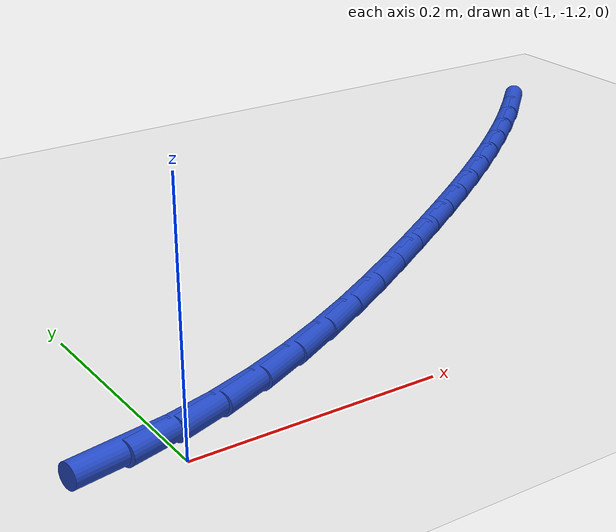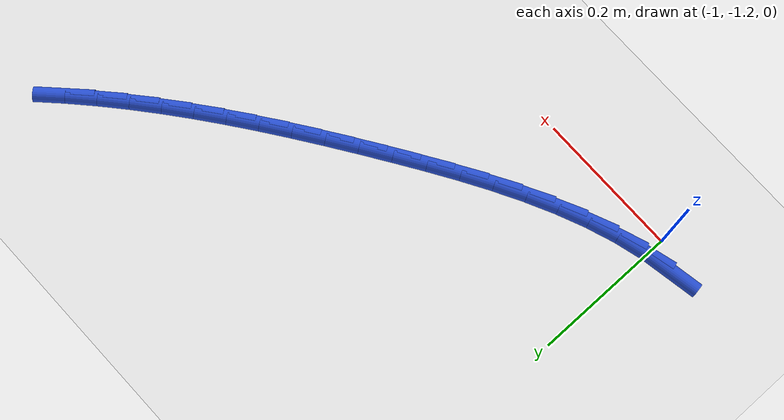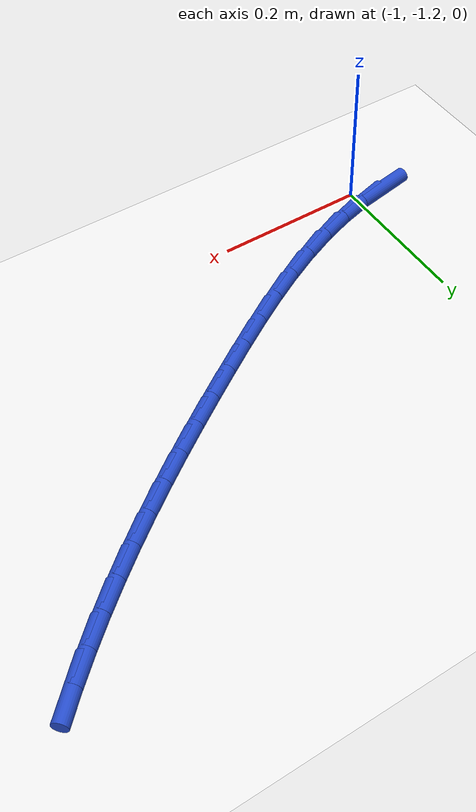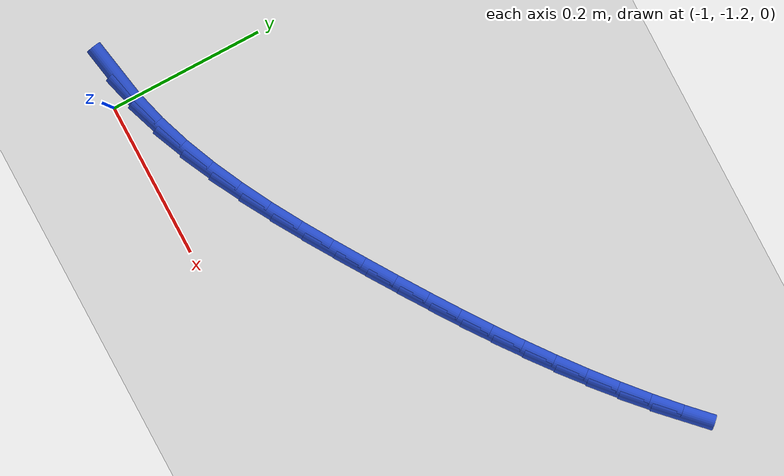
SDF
<sdf version="1.6">
 <world name="default">
  <model name="ground_plane">
   <static>1</static>
   <link name="link">
    <collision name="collision">
     <geometry><plane><normal>0 0 1</normal><size>100 100</size></plane></geometry>
     <surface><friction><ode><mu>100</mu><mu2>50</mu2></ode></friction></surface>
    </collision>
    <visual name="visual">
     <cast_shadows>0</cast_shadows>
     <geometry><plane><normal>0 0 1</normal><size>100 100</size></plane></geometry>
     <material>
      <script><uri>file://media/materials/scripts/gazebo.material</uri><name>Gazebo/WhiteGlow</name></script>
     </material>
    </visual>
   </link>
  </model>
  <model name="line">
   <link name="link_121">
    <pose>-1.0377421300436136 -1.1794919997781481 0.01 0 1.57 0.1789282663885223</pose>
    <collision name="collision">
     <geometry><cylinder><radius>0.01</radius><length>0.08</length></cylinder></geometry>
    </collision>
    <visual name="visual">
     <material>
      <script><name>Gazebo/Blue</name><uri>file://media/materials/scripts/gazebo.material</uri></script>
     </material>
     <geometry><cylinder><radius>0.01</radius><length>0.08</length></cylinder></geometry>
    </visual>
   </link>
   <link name="link_122">
    <pose>-0.9975272071303087 -1.1722186273707327 0.01 0 1.57 0.2678600219318349</pose>
    <collision name="collision">
     <geometry><cylinder><radius>0.01</radius><length>0.08</length></cylinder></geometry>
    </collision>
    <visual name="visual">
     <material>
      <script><name>Gazebo/Blue</name><uri>file://media/materials/scripts/gazebo.material</uri></script>
     </material>
     <geometry><cylinder><radius>0.01</radius><length>0.08</length></cylinder></geometry>
    </visual>
   </link>
   <link name="link_123">
    <pose>-0.95735476300595 -1.1611930748652848 0.01 0 1.57 0.34324701541567026</pose>
    <collision name="collision">
     <geometry><cylinder><radius>0.01</radius><length>0.08</length></cylinder></geometry>
    </collision>
    <visual name="visual">
     <material>
      <script><name>Gazebo/Blue</name><uri>file://media/materials/scripts/gazebo.material</uri></script>
     </material>
     <geometry><cylinder><radius>0.01</radius><length>0.08</length></cylinder></geometry>
    </visual>
   </link>
   <link name="link_124">
    <pose>-0.9172990729484544 -1.1468773953252465 0.01 0 1.57 0.40613932737354064</pose>
    <collision name="collision">
     <geometry><cylinder><radius>0.01</radius><length>0.08</length></cylinder></geometry>
    </collision>
    <visual name="visual">
     <material>
      <script><name>Gazebo/Blue</name><uri>file://media/materials/scripts/gazebo.material</uri></script>
     </material>
     <geometry><cylinder><radius>0.01</radius><length>0.08</length></cylinder></geometry>
    </visual>
   </link>
   <link name="link_125">
    <pose>-0.8774344122357394 -1.1297336418140609 0.01 0 1.57 0.4577737413733419</pose>
    <collision name="collision">
     <geometry><cylinder><radius>0.01</radius><length>0.08</length></cylinder></geometry>
    </collision>
    <visual name="visual">
     <material>
      <script><name>Gazebo/Blue</name><uri>file://media/materials/scripts/gazebo.material</uri></script>
     </material>
     <geometry><cylinder><radius>0.01</radius><length>0.08</length></cylinder></geometry>
    </visual>
   </link>
   <link name="link_126">
    <pose>-0.8378350561457211 -1.11022386739517 0.01 0 1.57 0.49933335079487856</pose>
    <collision name="collision">
     <geometry><cylinder><radius>0.01</radius><length>0.08</length></cylinder></geometry>
    </collision>
    <visual name="visual">
     <material>
      <script><name>Gazebo/Blue</name><uri>file://media/materials/scripts/gazebo.material</uri></script>
     </material>
     <geometry><cylinder><radius>0.01</radius><length>0.08</length></cylinder></geometry>
    </visual>
   </link>
   <link name="link_127">
    <pose>-0.798575279956319 -1.0888101251320172 0.01 0 1.57 0.5318218915323814</pose>
    <collision name="collision">
     <geometry><cylinder><radius>0.01</radius><length>0.08</length></cylinder></geometry>
    </collision>
    <visual name="visual">
     <material>
      <script><name>Gazebo/Blue</name><uri>file://media/materials/scripts/gazebo.material</uri></script>
     </material>
     <geometry><cylinder><radius>0.01</radius><length>0.08</length></cylinder></geometry>
    </visual>
   </link>
   <link name="link_128">
    <pose>-0.7597293589454491 -1.0659544680880453 0.01 0 1.57 0.5560061306264797</pose>
    <collision name="collision">
     <geometry><cylinder><radius>0.01</radius><length>0.08</length></cylinder></geometry>
    </collision>
    <visual name="visual">
     <material>
      <script><name>Gazebo/Blue</name><uri>file://media/materials/scripts/gazebo.material</uri></script>
     </material>
     <geometry><cylinder><radius>0.01</radius><length>0.08</length></cylinder></geometry>
    </visual>
   </link>
   <link name="link_129">
    <pose>-0.721371568391029 -1.0421189493266962 0.01 0 1.57 0.5723906723930335</pose>
    <collision name="collision">
     <geometry><cylinder><radius>0.01</radius><length>0.08</length></cylinder></geometry>
    </collision>
    <visual name="visual">
     <material>
      <script><name>Gazebo/Blue</name><uri>file://media/materials/scripts/gazebo.material</uri></script>
     </material>
     <geometry><cylinder><radius>0.01</radius><length>0.08</length></cylinder></geometry>
    </visual>
   </link>
   <link name="link_130">
    <pose>-0.6835761835709756 -1.0177656219114128 0.01 0 1.57 0.5822347419691891</pose>
    <collision name="collision">
     <geometry><cylinder><radius>0.01</radius><length>0.08</length></cylinder></geometry>
    </collision>
    <visual name="visual">
     <material>
      <script><name>Gazebo/Blue</name><uri>file://media/materials/scripts/gazebo.material</uri></script>
     </material>
     <geometry><cylinder><radius>0.01</radius><length>0.08</length></cylinder></geometry>
    </visual>
   </link>
   <link name="link_131">
    <pose>-0.6464111207354165 -0.9932973660548232 0.01 0 1.57 0.591895963373089</pose>
    <collision name="collision">
     <geometry><cylinder><radius>0.01</radius><length>0.08</length></cylinder></geometry>
    </collision>
    <visual name="visual">
     <material>
      <script><name>Gazebo/Blue</name><uri>file://media/materials/scripts/gazebo.material</uri></script>
     </material>
     <geometry><cylinder><radius>0.01</radius><length>0.08</length></cylinder></geometry>
    </visual>
   </link>
   <link name="link_132">
    <pose>-0.6099053147733834 -0.9687543275483605 0.01 0 1.57 0.6038074241144153</pose>
    <collision name="collision">
     <geometry><cylinder><radius>0.01</radius><length>0.08</length></cylinder></geometry>
    </collision>
    <visual name="visual">
     <material>
      <script><name>Gazebo/Blue</name><uri>file://media/materials/scripts/gazebo.material</uri></script>
     </material>
     <geometry><cylinder><radius>0.01</radius><length>0.08</length></cylinder></geometry>
    </visual>
   </link>
   <link name="link_133">
    <pose>-0.5740729368770661 -0.944039271115237 0.01 0 1.57 0.6180063913507573</pose>
    <collision name="collision">
     <geometry><cylinder><radius>0.01</radius><length>0.08</length></cylinder></geometry>
    </collision>
    <visual name="visual">
     <material>
      <script><name>Gazebo/Blue</name><uri>file://media/materials/scripts/gazebo.material</uri></script>
     </material>
     <geometry><cylinder><radius>0.01</radius><length>0.08</length></cylinder></geometry>
    </visual>
   </link>
   <link name="link_134">
    <pose>-0.5389281303244572 -0.9190547017278482 0.01 0 1.57 0.6345082613977243</pose>
    <collision name="collision">
     <geometry><cylinder><radius>0.01</radius><length>0.08</length></cylinder></geometry>
    </collision>
    <visual name="visual">
     <material>
      <script><name>Gazebo/Blue</name><uri>file://media/materials/scripts/gazebo.material</uri></script>
     </material>
     <geometry><cylinder><radius>0.01</radius><length>0.08</length></cylinder></geometry>
    </visual>
   </link>
   <link name="link_135">
    <pose>-0.50448503839355 -0.8937031243585919 0.01 0 1.57 0.653307947832246</pose>
    <collision name="collision">
     <geometry><cylinder><radius>0.01</radius><length>0.08</length></cylinder></geometry>
    </collision>
    <visual name="visual">
     <material>
      <script><name>Gazebo/Blue</name><uri>file://media/materials/scripts/gazebo.material</uri></script>
     </material>
     <geometry><cylinder><radius>0.01</radius><length>0.08</length></cylinder></geometry>
    </visual>
   </link>
   <link name="link_136">
    <pose>-0.470757804362336 -0.8678870439798633 0.01 0 1.57 0.674376654293046</pose>
    <collision name="collision">
     <geometry><cylinder><radius>0.01</radius><length>0.08</length></cylinder></geometry>
    </collision>
    <visual name="visual">
     <material>
      <script><name>Gazebo/Blue</name><uri>file://media/materials/scripts/gazebo.material</uri></script>
     </material>
     <geometry><cylinder><radius>0.01</radius><length>0.08</length></cylinder></geometry>
    </visual>
   </link>
   <link name="link_137">
    <pose>-0.4377605715088095 -0.84150896556406 0.01 0 1.57 0.697658767553074</pose>
    <collision name="collision">
     <geometry><cylinder><radius>0.01</radius><length>0.08</length></cylinder></geometry>
    </collision>
    <visual name="visual">
     <material>
      <script><name>Gazebo/Blue</name><uri>file://media/materials/scripts/gazebo.material</uri></script>
     </material>
     <geometry><cylinder><radius>0.01</radius><length>0.08</length></cylinder></geometry>
    </visual>
   </link>
   <link name="link_138">
    <pose>-0.40550748311096285 -0.8144713940835788 0.01 0 1.57 0.7230691361172391</pose>
    <collision name="collision">
     <geometry><cylinder><radius>0.01</radius><length>0.08</length></cylinder></geometry>
    </collision>
    <visual name="visual">
     <material>
      <script><name>Gazebo/Blue</name><uri>file://media/materials/scripts/gazebo.material</uri></script>
     </material>
     <geometry><cylinder><radius>0.01</radius><length>0.08</length></cylinder></geometry>
    </visual>
   </link>
   <link name="link_139">
    <pose>-0.3740126824467884 -0.7866768345108157 0.01 0 1.57 0.7504910475208975</pose>
    <collision name="collision">
     <geometry><cylinder><radius>0.01</radius><length>0.08</length></cylinder></geometry>
    </collision>
    <visual name="visual">
     <material>
      <script><name>Gazebo/Blue</name><uri>file://media/materials/scripts/gazebo.material</uri></script>
     </material>
     <geometry><cylinder><radius>0.01</radius><length>0.08</length></cylinder></geometry>
    </visual>
   </link>
   <link name="link_140">
    <pose>-0.34329031279427924 -0.7580277918181675 0.01 0 1.57 0.7797752393676128</pose>
    <collision name="collision">
     <geometry><cylinder><radius>0.01</radius><length>0.08</length></cylinder></geometry>
    </collision>
    <visual name="visual">
     <material>
      <script><name>Gazebo/Blue</name><uri>file://media/materials/scripts/gazebo.material</uri></script>
     </material>
     <geometry><cylinder><radius>0.01</radius><length>0.08</length></cylinder></geometry>
    </visual>
   </link>
  </model>
 </world>
</sdf>
